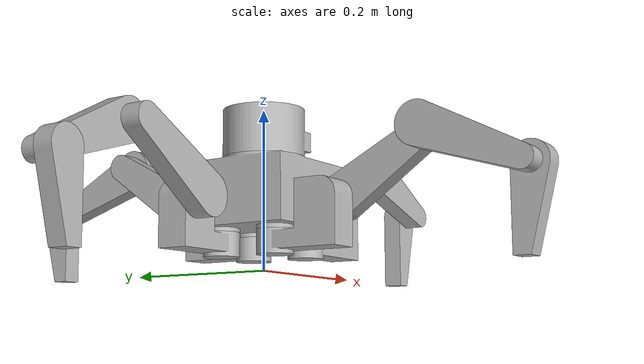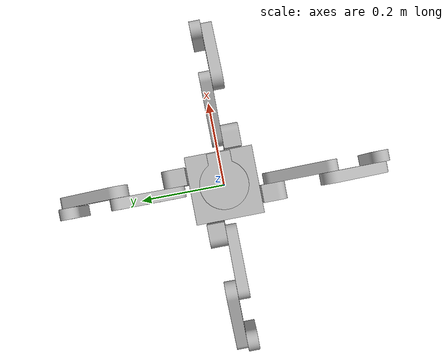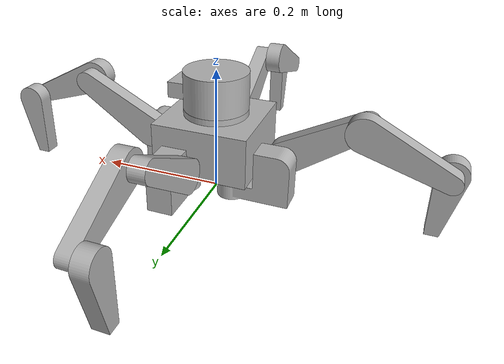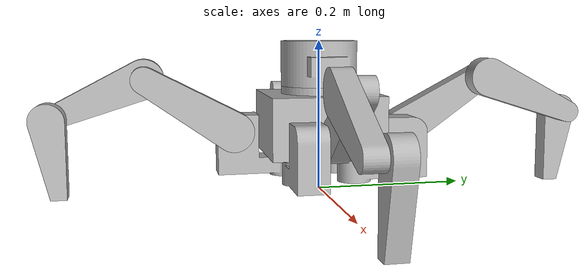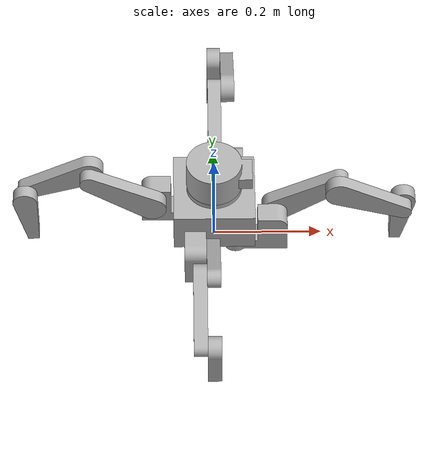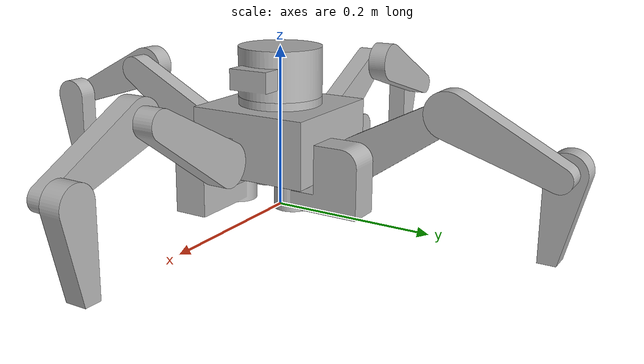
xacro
<?xml version="1.0" ?>
<robot name="GwenBot" xmlns:xacro="http://www.ros.org/wiki/xacro">

<xacro:include filename="$(find GwenBot_description)/urdf/materials.xacro" />
<xacro:include filename="$(find GwenBot_description)/urdf/GwenBot.trans" />
<xacro:include filename="$(find GwenBot_description)/urdf/GwenBot.gazebo" />
<link name="base_link">
  <inertial>
    <origin xyz="-9.508086022411699e-18 -9.508086022411699e-18 0.09122340169705838" rpy="0 0 0"/>
    <mass value="15.01781408390448"/>
    <inertia ixx="0.036553" iyy="0.036553" izz="0.054579" ixy="0.0" iyz="-0.0" ixz="-0.0"/>
  </inertial>
  <visual>
    <origin xyz="0 0 0" rpy="0 0 0"/>
    <geometry>
      <mesh filename="file://$(find GwenBot_description)/meshes/base_link.stl" scale="0.001 0.001 0.001"/>
    </geometry>
    <material name="silver"/>
  </visual>
  <collision>
    <origin xyz="0 0 0" rpy="0 0 0"/>
    <geometry>
      <mesh filename="file://$(find GwenBot_description)/meshes/base_link.stl" scale="0.001 0.001 0.001"/>
    </geometry>
  </collision>
</link>

<link name="leg_1_link1_1">
  <inertial>
    <origin xyz="-0.0508405506944885 0.00030098679807078615 0.006242457644906829" rpy="0 0 0"/>
    <mass value="1.870884141195306"/>
    <inertia ixx="0.001302" iyy="0.002818" izz="0.002014" ixy="6e-06" iyz="-2e-06" ixz="0.000617"/>
  </inertial>
  <visual>
    <origin xyz="0.04 -0.035 -0.045" rpy="0 0 0"/>
    <geometry>
      <mesh filename="file://$(find GwenBot_description)/meshes/leg_1_link1_1.stl" scale="0.001 0.001 0.001"/>
    </geometry>
    <material name="silver"/>
  </visual>
  <collision>
    <origin xyz="0.04 -0.035 -0.045" rpy="0 0 0"/>
    <geometry>
      <mesh filename="file://$(find GwenBot_description)/meshes/leg_1_link1_1.stl" scale="0.001 0.001 0.001"/>
    </geometry>
  </collision>
</link>

<link name="leg_1_link2_1">
  <inertial>
    <origin xyz="-0.04845026640977741 -0.012500320225002104 0.029491466510299297" rpy="0 0 0"/>
    <mass value="1.4597449761137202"/>
    <inertia ixx="0.001173" iyy="0.003657" izz="0.002636" ixy="-0.0" iyz="-0.0" ixz="0.001415"/>
  </inertial>
  <visual>
    <origin xyz="0.115 -0.015361 -0.08" rpy="0 0 0"/>
    <geometry>
      <mesh filename="file://$(find GwenBot_description)/meshes/leg_1_link2_1.stl" scale="0.001 0.001 0.001"/>
    </geometry>
    <material name="silver"/>
  </visual>
  <collision>
    <origin xyz="0.115 -0.015361 -0.08" rpy="0 0 0"/>
    <geometry>
      <mesh filename="file://$(find GwenBot_description)/meshes/leg_1_link2_1.stl" scale="0.001 0.001 0.001"/>
    </geometry>
  </collision>
</link>

<link name="leg_1_link3_1">
  <inertial>
    <origin xyz="-0.0471116566968843 0.012499679774997895 -0.019629712187191783" rpy="0 0 0"/>
    <mass value="1.301183102585068"/>
    <inertia ixx="0.000634" iyy="0.002921" izz="0.002422" ixy="0.0" iyz="0.0" ixz="-0.000902"/>
  </inertial>
  <visual>
    <origin xyz="0.23 -0.015361 -0.15" rpy="0 0 0"/>
    <geometry>
      <mesh filename="file://$(find GwenBot_description)/meshes/leg_1_link3_1.stl" scale="0.001 0.001 0.001"/>
    </geometry>
    <material name="silver"/>
  </visual>
  <collision>
    <origin xyz="0.23 -0.015361 -0.15" rpy="0 0 0"/>
    <geometry>
      <mesh filename="file://$(find GwenBot_description)/meshes/leg_1_link3_1.stl" scale="0.001 0.001 0.001"/>
    </geometry>
  </collision>
</link>

<link name="leg_1_link4_1">
  <inertial>
    <origin xyz="0.004146156223267139 -0.012500320225002104 -0.03340633776308424" rpy="0 0 0"/>
    <mass value="0.7990380974909679"/>
    <inertia ixx="0.00091" iyy="0.000965" izz="0.000139" ixy="0.0" iyz="-0.0" ixz="9.8e-05"/>
  </inertial>
  <visual>
    <origin xyz="0.35 -0.015361 -0.1" rpy="0 0 0"/>
    <geometry>
      <mesh filename="file://$(find GwenBot_description)/meshes/leg_1_link4_1.stl" scale="0.001 0.001 0.001"/>
    </geometry>
    <material name="silver"/>
  </visual>
  <collision>
    <origin xyz="0.35 -0.015361 -0.1" rpy="0 0 0"/>
    <geometry>
      <mesh filename="file://$(find GwenBot_description)/meshes/leg_1_link4_1.stl" scale="0.001 0.001 0.001"/>
    </geometry>
  </collision>
</link>

<link name="leg_2_link1_1">
  <inertial>
    <origin xyz="-0.00030098679807080003 -0.050840550694488514 0.006242457644906836" rpy="0 0 0"/>
    <mass value="1.8708841411953063"/>
    <inertia ixx="0.002818" iyy="0.001302" izz="0.002014" ixy="-6e-06" iyz="0.000617" ixz="2e-06"/>
  </inertial>
  <visual>
    <origin xyz="0.035 0.04 -0.045" rpy="0 0 0"/>
    <geometry>
      <mesh filename="file://$(find GwenBot_description)/meshes/leg_2_link1_1.stl" scale="0.001 0.001 0.001"/>
    </geometry>
    <material name="silver"/>
  </visual>
  <collision>
    <origin xyz="0.035 0.04 -0.045" rpy="0 0 0"/>
    <geometry>
      <mesh filename="file://$(find GwenBot_description)/meshes/leg_2_link1_1.stl" scale="0.001 0.001 0.001"/>
    </geometry>
  </collision>
</link>

<link name="leg_2_link2_1">
  <inertial>
    <origin xyz="0.012500320225002092 -0.048450266409777384 0.029491466510299297" rpy="0 0 0"/>
    <mass value="1.4597449761137204"/>
    <inertia ixx="0.003657" iyy="0.001173" izz="0.002636" ixy="0.0" iyz="0.001415" ixz="-0.0"/>
  </inertial>
  <visual>
    <origin xyz="0.015361 0.115 -0.08" rpy="0 0 0"/>
    <geometry>
      <mesh filename="file://$(find GwenBot_description)/meshes/leg_2_link2_1.stl" scale="0.001 0.001 0.001"/>
    </geometry>
    <material name="silver"/>
  </visual>
  <collision>
    <origin xyz="0.015361 0.115 -0.08" rpy="0 0 0"/>
    <geometry>
      <mesh filename="file://$(find GwenBot_description)/meshes/leg_2_link2_1.stl" scale="0.001 0.001 0.001"/>
    </geometry>
  </collision>
</link>

<link name="leg_2_link3_1">
  <inertial>
    <origin xyz="-0.01249967977499792 -0.047111656696884247 -0.019629712187191756" rpy="0 0 0"/>
    <mass value="1.3011831025850682"/>
    <inertia ixx="0.002921" iyy="0.000634" izz="0.002422" ixy="-0.0" iyz="-0.000902" ixz="-0.0"/>
  </inertial>
  <visual>
    <origin xyz="0.015361 0.23 -0.15" rpy="0 0 0"/>
    <geometry>
      <mesh filename="file://$(find GwenBot_description)/meshes/leg_2_link3_1.stl" scale="0.001 0.001 0.001"/>
    </geometry>
    <material name="silver"/>
  </visual>
  <collision>
    <origin xyz="0.015361 0.23 -0.15" rpy="0 0 0"/>
    <geometry>
      <mesh filename="file://$(find GwenBot_description)/meshes/leg_2_link3_1.stl" scale="0.001 0.001 0.001"/>
    </geometry>
  </collision>
</link>

<link name="leg_2_link4_1">
  <inertial>
    <origin xyz="0.012500320225002082 0.004146156223267139 -0.03340633776308424" rpy="0 0 0"/>
    <mass value="0.7990380974909679"/>
    <inertia ixx="0.000965" iyy="0.00091" izz="0.000139" ixy="0.0" iyz="9.8e-05" ixz="0.0"/>
  </inertial>
  <visual>
    <origin xyz="0.015361 0.35 -0.1" rpy="0 0 0"/>
    <geometry>
      <mesh filename="file://$(find GwenBot_description)/meshes/leg_2_link4_1.stl" scale="0.001 0.001 0.001"/>
    </geometry>
    <material name="silver"/>
  </visual>
  <collision>
    <origin xyz="0.015361 0.35 -0.1" rpy="0 0 0"/>
    <geometry>
      <mesh filename="file://$(find GwenBot_description)/meshes/leg_2_link4_1.stl" scale="0.001 0.001 0.001"/>
    </geometry>
  </collision>
</link>

<link name="leg_3_link1_1">
  <inertial>
    <origin xyz="0.0508405506944885 -0.00030098679807080003 0.006242457644906836" rpy="0 0 0"/>
    <mass value="1.870884141195306"/>
    <inertia ixx="0.001302" iyy="0.002818" izz="0.002014" ixy="6e-06" iyz="2e-06" ixz="-0.000617"/>
  </inertial>
  <visual>
    <origin xyz="-0.04 0.035 -0.045" rpy="0 0 0"/>
    <geometry>
      <mesh filename="file://$(find GwenBot_description)/meshes/leg_3_link1_1.stl" scale="0.001 0.001 0.001"/>
    </geometry>
    <material name="silver"/>
  </visual>
  <collision>
    <origin xyz="-0.04 0.035 -0.045" rpy="0 0 0"/>
    <geometry>
      <mesh filename="file://$(find GwenBot_description)/meshes/leg_3_link1_1.stl" scale="0.001 0.001 0.001"/>
    </geometry>
  </collision>
</link>

<link name="leg_3_link2_1">
  <inertial>
    <origin xyz="0.04845026640977741 0.012500320225002078 0.02949146651029931" rpy="0 0 0"/>
    <mass value="1.4597449761137204"/>
    <inertia ixx="0.001173" iyy="0.003657" izz="0.002636" ixy="0.0" iyz="0.0" ixz="-0.001415"/>
  </inertial>
  <visual>
    <origin xyz="-0.115 0.015361 -0.08" rpy="0 0 0"/>
    <geometry>
      <mesh filename="file://$(find GwenBot_description)/meshes/leg_3_link2_1.stl" scale="0.001 0.001 0.001"/>
    </geometry>
    <material name="silver"/>
  </visual>
  <collision>
    <origin xyz="-0.115 0.015361 -0.08" rpy="0 0 0"/>
    <geometry>
      <mesh filename="file://$(find GwenBot_description)/meshes/leg_3_link2_1.stl" scale="0.001 0.001 0.001"/>
    </geometry>
  </collision>
</link>

<link name="leg_3_link3_1">
  <inertial>
    <origin xyz="0.047111656696884247 -0.012499679774997927 -0.019629712187191756" rpy="0 0 0"/>
    <mass value="1.3011831025850682"/>
    <inertia ixx="0.000634" iyy="0.002921" izz="0.002422" ixy="0.0" iyz="0.0" ixz="0.000902"/>
  </inertial>
  <visual>
    <origin xyz="-0.23 0.015361 -0.15" rpy="0 0 0"/>
    <geometry>
      <mesh filename="file://$(find GwenBot_description)/meshes/leg_3_link3_1.stl" scale="0.001 0.001 0.001"/>
    </geometry>
    <material name="silver"/>
  </visual>
  <collision>
    <origin xyz="-0.23 0.015361 -0.15" rpy="0 0 0"/>
    <geometry>
      <mesh filename="file://$(find GwenBot_description)/meshes/leg_3_link3_1.stl" scale="0.001 0.001 0.001"/>
    </geometry>
  </collision>
</link>

<link name="leg_3_link4_1">
  <inertial>
    <origin xyz="-0.0041461562232671945 0.012500320225002063 -0.03340633776308424" rpy="0 0 0"/>
    <mass value="0.7990380974909678"/>
    <inertia ixx="0.00091" iyy="0.000965" izz="0.000139" ixy="0.0" iyz="0.0" ixz="-9.8e-05"/>
  </inertial>
  <visual>
    <origin xyz="-0.35 0.015361 -0.1" rpy="0 0 0"/>
    <geometry>
      <mesh filename="file://$(find GwenBot_description)/meshes/leg_3_link4_1.stl" scale="0.001 0.001 0.001"/>
    </geometry>
    <material name="silver"/>
  </visual>
  <collision>
    <origin xyz="-0.35 0.015361 -0.1" rpy="0 0 0"/>
    <geometry>
      <mesh filename="file://$(find GwenBot_description)/meshes/leg_3_link4_1.stl" scale="0.001 0.001 0.001"/>
    </geometry>
  </collision>
</link>

<link name="leg_4_link1_1">
  <inertial>
    <origin xyz="0.00030098679807080003 0.05084055069448847 0.006242457644906829" rpy="0 0 0"/>
    <mass value="1.8708841411953063"/>
    <inertia ixx="0.002818" iyy="0.001302" izz="0.002014" ixy="-6e-06" iyz="-0.000617" ixz="-2e-06"/>
  </inertial>
  <visual>
    <origin xyz="-0.035 -0.04 -0.045" rpy="0 0 0"/>
    <geometry>
      <mesh filename="file://$(find GwenBot_description)/meshes/leg_4_link1_1.stl" scale="0.001 0.001 0.001"/>
    </geometry>
    <material name="silver"/>
  </visual>
  <collision>
    <origin xyz="-0.035 -0.04 -0.045" rpy="0 0 0"/>
    <geometry>
      <mesh filename="file://$(find GwenBot_description)/meshes/leg_4_link1_1.stl" scale="0.001 0.001 0.001"/>
    </geometry>
  </collision>
</link>

<link name="leg_4_link2_1">
  <inertial>
    <origin xyz="-0.012500320225002071 0.04845026640977747 0.029491466510299325" rpy="0 0 0"/>
    <mass value="1.4597449761137202"/>
    <inertia ixx="0.003657" iyy="0.001173" izz="0.002636" ixy="0.0" iyz="-0.001415" ixz="0.0"/>
  </inertial>
  <visual>
    <origin xyz="-0.015361 -0.115 -0.08" rpy="0 0 0"/>
    <geometry>
      <mesh filename="file://$(find GwenBot_description)/meshes/leg_4_link2_1.stl" scale="0.001 0.001 0.001"/>
    </geometry>
    <material name="silver"/>
  </visual>
  <collision>
    <origin xyz="-0.015361 -0.115 -0.08" rpy="0 0 0"/>
    <geometry>
      <mesh filename="file://$(find GwenBot_description)/meshes/leg_4_link2_1.stl" scale="0.001 0.001 0.001"/>
    </geometry>
  </collision>
</link>

<link name="leg_4_link3_1">
  <inertial>
    <origin xyz="0.012499679774997944 0.0471116566968843 -0.019629712187191783" rpy="0 0 0"/>
    <mass value="1.301183102585068"/>
    <inertia ixx="0.002921" iyy="0.000634" izz="0.002422" ixy="-0.0" iyz="0.000902" ixz="0.0"/>
  </inertial>
  <visual>
    <origin xyz="-0.015361 -0.23 -0.15" rpy="0 0 0"/>
    <geometry>
      <mesh filename="file://$(find GwenBot_description)/meshes/leg_4_link3_1.stl" scale="0.001 0.001 0.001"/>
    </geometry>
    <material name="silver"/>
  </visual>
  <collision>
    <origin xyz="-0.015361 -0.23 -0.15" rpy="0 0 0"/>
    <geometry>
      <mesh filename="file://$(find GwenBot_description)/meshes/leg_4_link3_1.stl" scale="0.001 0.001 0.001"/>
    </geometry>
  </collision>
</link>

<link name="leg_4_link4_1">
  <inertial>
    <origin xyz="-0.012500320225002042 -0.0041461562232671945 -0.03340633776308426" rpy="0 0 0"/>
    <mass value="0.799038097490968"/>
    <inertia ixx="0.000965" iyy="0.00091" izz="0.000139" ixy="0.0" iyz="-9.8e-05" ixz="-0.0"/>
  </inertial>
  <visual>
    <origin xyz="-0.015361 -0.35 -0.1" rpy="0 0 0"/>
    <geometry>
      <mesh filename="file://$(find GwenBot_description)/meshes/leg_4_link4_1.stl" scale="0.001 0.001 0.001"/>
    </geometry>
    <material name="silver"/>
  </visual>
  <collision>
    <origin xyz="-0.015361 -0.35 -0.1" rpy="0 0 0"/>
    <geometry>
      <mesh filename="file://$(find GwenBot_description)/meshes/leg_4_link4_1.stl" scale="0.001 0.001 0.001"/>
    </geometry>
  </collision>
</link>

<link name="camera_link_1">
  <inertial>
    <origin xyz="0.0030352218012061807 -8.804310368859141e-18 0.029872136334849975" rpy="0 0 0"/>
    <mass value="4.0545670869180315"/>
    <inertia ixx="0.003714" iyy="0.004368" izz="0.005749" ixy="-0.0" iyz="-0.0" ixz="2.9e-05"/>
  </inertial>
  <visual>
    <origin xyz="-0.0 -0.0 -0.14" rpy="0 0 0"/>
    <geometry>
      <mesh filename="file://$(find GwenBot_description)/meshes/camera_link_1.stl" scale="0.001 0.001 0.001"/>
    </geometry>
    <material name="silver"/>
  </visual>
  <collision>
    <origin xyz="-0.0 -0.0 -0.14" rpy="0 0 0"/>
    <geometry>
      <mesh filename="file://$(find GwenBot_description)/meshes/camera_link_1.stl" scale="0.001 0.001 0.001"/>
    </geometry>
  </collision>
</link>

<joint name="leg_1_joint_1" type="revolute">
  <origin xyz="-0.04 0.035 0.045" rpy="0 0 0"/>
  <parent link="base_link"/>
  <child link="leg_1_link1_1"/>
  <axis xyz="0.0 0.0 -1.0"/>
  <limit upper="0.174533" lower="-0.174533" effort="100" velocity="100"/>
</joint>

<joint name="leg_1_joint_2" type="revolute">
  <origin xyz="-0.075 -0.019639 0.035" rpy="0 0 0"/>
  <parent link="leg_1_link1_1"/>
  <child link="leg_1_link2_1"/>
  <axis xyz="0.0 -1.0 0.0"/>
  <limit upper="1.047198" lower="-1.047198" effort="100" velocity="100"/>
</joint>

<joint name="leg_1_joint_3" type="continuous">
  <origin xyz="-0.115 0.0 0.07" rpy="0 0 0"/>
  <parent link="leg_1_link2_1"/>
  <child link="leg_1_link3_1"/>
  <axis xyz="0.0 1.0 0.0"/>
</joint>

<joint name="leg_1_joint_4" type="continuous">
  <origin xyz="-0.12 0.0 -0.05" rpy="0 0 0"/>
  <parent link="leg_1_link3_1"/>
  <child link="leg_1_link4_1"/>
  <axis xyz="0.0 -1.0 0.0"/>
</joint>

<joint name="leg_2_joint_1" type="revolute">
  <origin xyz="-0.035 -0.04 0.045" rpy="0 0 0"/>
  <parent link="base_link"/>
  <child link="leg_2_link1_1"/>
  <axis xyz="0.0 0.0 -1.0"/>
  <limit upper="0.174533" lower="-0.174533" effort="100" velocity="100"/>
</joint>

<joint name="leg_2_joint_2" type="revolute">
  <origin xyz="0.019639 -0.075 0.035" rpy="0 0 0"/>
  <parent link="leg_2_link1_1"/>
  <child link="leg_2_link2_1"/>
  <axis xyz="1.0 0.0 0.0"/>
  <limit upper="1.047198" lower="-1.047198" effort="100" velocity="100"/>
</joint>

<joint name="leg_2_joint_3" type="continuous">
  <origin xyz="0.0 -0.115 0.07" rpy="0 0 0"/>
  <parent link="leg_2_link2_1"/>
  <child link="leg_2_link3_1"/>
  <axis xyz="-1.0 0.0 0.0"/>
</joint>

<joint name="leg_2_joint_4" type="continuous">
  <origin xyz="0.0 -0.12 -0.05" rpy="0 0 0"/>
  <parent link="leg_2_link3_1"/>
  <child link="leg_2_link4_1"/>
  <axis xyz="1.0 0.0 0.0"/>
</joint>

<joint name="leg_3_joint_1" type="revolute">
  <origin xyz="0.04 -0.035 0.045" rpy="0 0 0"/>
  <parent link="base_link"/>
  <child link="leg_3_link1_1"/>
  <axis xyz="0.0 0.0 -1.0"/>
  <limit upper="0.174533" lower="-0.174533" effort="100" velocity="100"/>
</joint>

<joint name="leg_3_joint_2" type="revolute">
  <origin xyz="0.075 0.019639 0.035" rpy="0 0 0"/>
  <parent link="leg_3_link1_1"/>
  <child link="leg_3_link2_1"/>
  <axis xyz="0.0 1.0 0.0"/>
  <limit upper="1.047198" lower="-1.047198" effort="100" velocity="100"/>
</joint>

<joint name="leg_3_joint_3" type="continuous">
  <origin xyz="0.115 0.0 0.07" rpy="0 0 0"/>
  <parent link="leg_3_link2_1"/>
  <child link="leg_3_link3_1"/>
  <axis xyz="0.0 -1.0 0.0"/>
</joint>

<joint name="leg_3_joint_4" type="continuous">
  <origin xyz="0.12 0.0 -0.05" rpy="0 0 0"/>
  <parent link="leg_3_link3_1"/>
  <child link="leg_3_link4_1"/>
  <axis xyz="0.0 1.0 0.0"/>
</joint>

<joint name="leg_4_join_1" type="revolute">
  <origin xyz="0.035 0.04 0.045" rpy="0 0 0"/>
  <parent link="base_link"/>
  <child link="leg_4_link1_1"/>
  <axis xyz="0.0 0.0 -1.0"/>
  <limit upper="0.174533" lower="-0.174533" effort="100" velocity="100"/>
</joint>

<joint name="leg_4_joint_1" type="revolute">
  <origin xyz="-0.019639 0.075 0.035" rpy="0 0 0"/>
  <parent link="leg_4_link1_1"/>
  <child link="leg_4_link2_1"/>
  <axis xyz="-1.0 0.0 0.0"/>
  <limit upper="1.047198" lower="-1.047198" effort="100" velocity="100"/>
</joint>

<joint name="leg_4_joint_3" type="continuous">
  <origin xyz="0.0 0.115 0.07" rpy="0 0 0"/>
  <parent link="leg_4_link2_1"/>
  <child link="leg_4_link3_1"/>
  <axis xyz="1.0 0.0 0.0"/>
</joint>

<joint name="leg_4_joint_4" type="continuous">
  <origin xyz="0.0 0.12 -0.05" rpy="0 0 0"/>
  <parent link="leg_4_link3_1"/>
  <child link="leg_4_link4_1"/>
  <axis xyz="-1.0 0.0 0.0"/>
</joint>

<joint name="camera_joint" type="fixed">
  <origin xyz="0.0 0.0 0.14" rpy="0 0 0"/>
  <parent link="base_link"/>
  <child link="camera_link_1"/>
</joint>

</robot>

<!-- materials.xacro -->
<robot name="GwenBot" xmlns:xacro="http://www.ros.org/wiki/xacro" >

<material name="silver">
  <color rgba="0.700 0.700 0.700 1.000"/>
</material>

</robot>

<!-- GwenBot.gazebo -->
<robot name="GwenBot" xmlns:xacro="http://www.ros.org/wiki/xacro" >

<xacro:property name="body_color" value="Gazebo/Silver" />

<gazebo reference="base_link">
  <material>${body_color}</material>
  <mu1>0.2</mu1>
  <mu2>0.2</mu2>
  <self_collide>true</self_collide>
  <gravity>true</gravity>
</gazebo>

<gazebo reference="leg_1_link1_1">
  <material>${body_color}</material>
  <mu1>0.2</mu1>
  <mu2>0.2</mu2>
  <self_collide>true</self_collide>
</gazebo>

<gazebo reference="leg_1_link2_1">
  <material>${body_color}</material>
  <mu1>0.2</mu1>
  <mu2>0.2</mu2>
  <self_collide>true</self_collide>
</gazebo>

<gazebo reference="leg_1_link3_1">
  <material>${body_color}</material>
  <mu1>0.2</mu1>
  <mu2>0.2</mu2>
  <self_collide>true</self_collide>
</gazebo>

<gazebo reference="leg_1_link4_1">
  <material>${body_color}</material>
  <mu1>0.2</mu1>
  <mu2>0.2</mu2>
  <self_collide>true</self_collide>
</gazebo>

<gazebo reference="leg_2_link1_1">
  <material>${body_color}</material>
  <mu1>0.2</mu1>
  <mu2>0.2</mu2>
  <self_collide>true</self_collide>
</gazebo>

<gazebo reference="leg_2_link2_1">
  <material>${body_color}</material>
  <mu1>0.2</mu1>
  <mu2>0.2</mu2>
  <self_collide>true</self_collide>
</gazebo>

<gazebo reference="leg_2_link3_1">
  <material>${body_color}</material>
  <mu1>0.2</mu1>
  <mu2>0.2</mu2>
  <self_collide>true</self_collide>
</gazebo>

<gazebo reference="leg_2_link4_1">
  <material>${body_color}</material>
  <mu1>0.2</mu1>
  <mu2>0.2</mu2>
  <self_collide>true</self_collide>
</gazebo>

<gazebo reference="leg_3_link1_1">
  <material>${body_color}</material>
  <mu1>0.2</mu1>
  <mu2>0.2</mu2>
  <self_collide>true</self_collide>
</gazebo>

<gazebo reference="leg_3_link2_1">
  <material>${body_color}</material>
  <mu1>0.2</mu1>
  <mu2>0.2</mu2>
  <self_collide>true</self_collide>
</gazebo>

<gazebo reference="leg_3_link3_1">
  <material>${body_color}</material>
  <mu1>0.2</mu1>
  <mu2>0.2</mu2>
  <self_collide>true</self_collide>
</gazebo>

<gazebo reference="leg_3_link4_1">
  <material>${body_color}</material>
  <mu1>0.2</mu1>
  <mu2>0.2</mu2>
  <self_collide>true</self_collide>
</gazebo>

<gazebo reference="leg_4_link1_1">
  <material>${body_color}</material>
  <mu1>0.2</mu1>
  <mu2>0.2</mu2>
  <self_collide>true</self_collide>
</gazebo>

<gazebo reference="leg_4_link2_1">
  <material>${body_color}</material>
  <mu1>0.2</mu1>
  <mu2>0.2</mu2>
  <self_collide>true</self_collide>
</gazebo>

<gazebo reference="leg_4_link3_1">
  <material>${body_color}</material>
  <mu1>0.2</mu1>
  <mu2>0.2</mu2>
  <self_collide>true</self_collide>
</gazebo>

<gazebo reference="leg_4_link4_1">
  <material>${body_color}</material>
  <mu1>0.2</mu1>
  <mu2>0.2</mu2>
  <self_collide>true</self_collide>
</gazebo>

<gazebo reference="camera_link_1">
  <material>${body_color}</material>
  <mu1>0.2</mu1>
  <mu2>0.2</mu2>
  <self_collide>true</self_collide>
</gazebo>

</robot>
